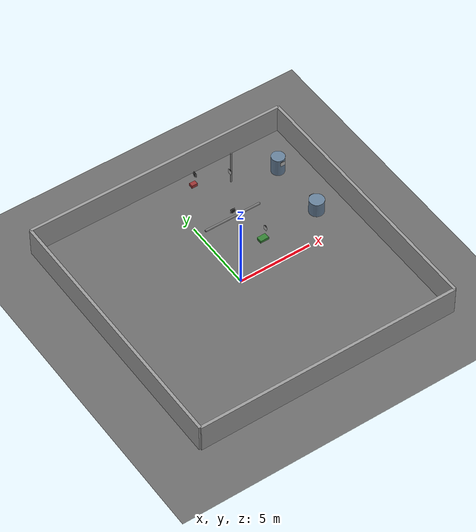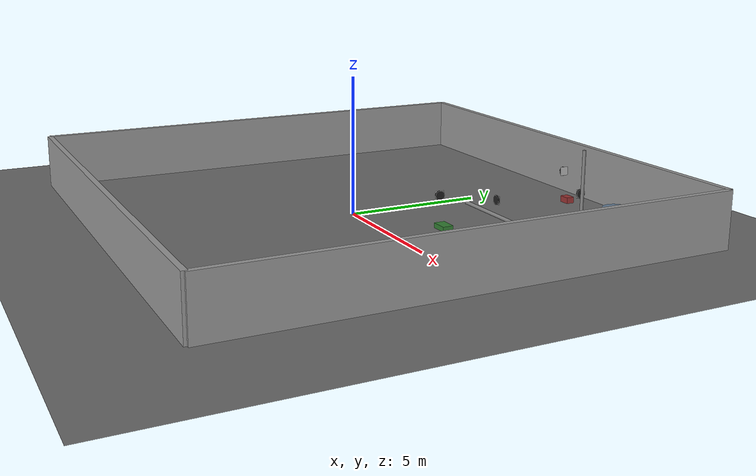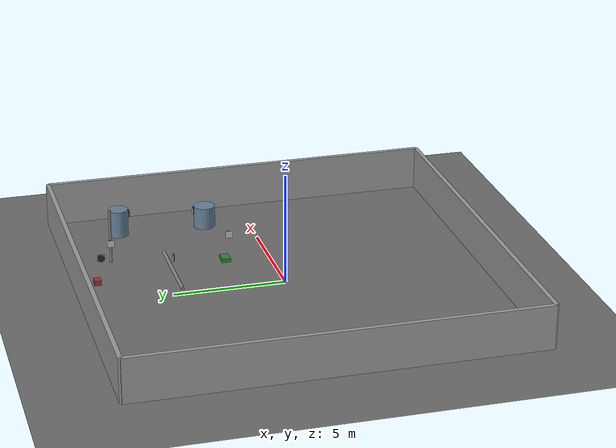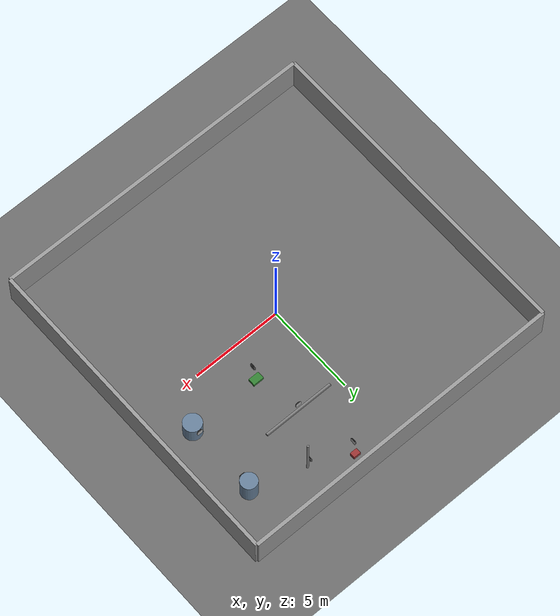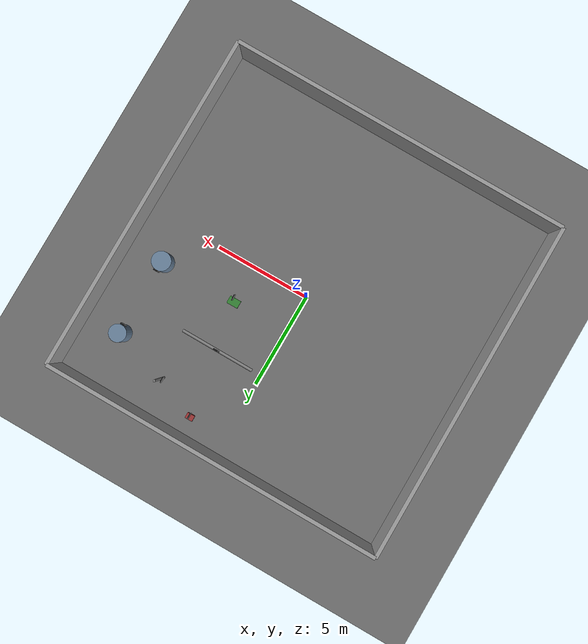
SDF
<?xml version="1.0"?>
<sdf version="1.10">
<world name="plant">

  <plugin filename="gz-sim-physics-system" name="gz::sim::systems::Physics"/>
  <plugin filename="gz-sim-user-commands-system" name="gz::sim::systems::UserCommands"/>
  <plugin filename="gz-sim-scene-broadcaster-system" name="gz::sim::systems::SceneBroadcaster"/>

  <!-- Gazebo Sensors and IMU systems are explicit so CPU/headless runs still
       produce LiDAR, camera, and IMU samples for SLAM and acceptance checks. -->
  <plugin filename="gz-sim-sensors-system" name="gz::sim::systems::Sensors">
    <render_engine>ogre2</render_engine>
  </plugin>
  <plugin filename="gz-sim-imu-system" name="gz::sim::systems::Imu"/>

  <gui fullscreen="0"/>
  <scene>
    <ambient>0.25 0.25 0.25 1</ambient>
    <background>0.08 0.10 0.14 1</background>
  </scene>
  <physics type="ode">
    <max_step_size>0.001</max_step_size>
    <real_time_factor>1.0</real_time_factor>
  </physics>

  <!-- Ground plane -->
  <model name="ground">
    <static>true</static>
    <link name="link">
      <visual name="visual">
        <geometry><plane><size>20 20</size></plane></geometry>
        <material><ambient>0.3 0.3 0.3</ambient><diffuse>0.42 0.42 0.42 1</diffuse></material>
      </visual>
      <collision name="collision">
        <geometry><plane><size>20 20</size></plane></geometry>
      </collision>
    </link>
  </model>

  <!-- Sunlight -->
  <light name="sun" type="directional">
    <pose>0 0 10 0 0 0</pose>
    <diffuse>0.8 0.8 0.8 1</diffuse>
    <specular>0.2 0.2 0.2 1</specular>
    <cast_shadows>false</cast_shadows>
    <attenuation><range>1000</range><constant>1.0</constant><linear>0.0</linear><quadratic>0.0</quadratic></attenuation>
    <direction>-0.5 0.1 -0.9</direction>
  </light>

  <!-- ===== WALLS ===== -->
  <model name="wall_north"><static>true</static><pose>0 9 1 0 0 0</pose>
    <link name="link"><visual name="v"><geometry><box><size>18 0.2 2</size></box></geometry><material><ambient>0.6 0.6 0.6</ambient></material></visual>
    <collision name="c"><geometry><box><size>18 0.2 2</size></box></geometry></collision></link></model>
  <model name="wall_south"><static>true</static><pose>0 -9 1 0 0 0</pose>
    <link name="link"><visual name="v"><geometry><box><size>18 0.2 2</size></box></geometry><material><ambient>0.6 0.6 0.6</ambient></material></visual>
    <collision name="c"><geometry><box><size>18 0.2 2</size></box></geometry></collision></link></model>
  <model name="wall_east"><static>true</static><pose>9 0 1 0 0 1.57</pose>
    <link name="link"><visual name="v"><geometry><box><size>18 0.2 2</size></box></geometry><material><ambient>0.6 0.6 0.6</ambient></material></visual>
    <collision name="c"><geometry><box><size>18 0.2 2</size></box></geometry></collision></link></model>
  <model name="wall_west"><static>true</static><pose>-9 0 1 0 0 1.57</pose>
    <link name="link"><visual name="v"><geometry><box><size>18 0.2 2</size></box></geometry><material><ambient>0.6 0.6 0.6</ambient></material></visual>
    <collision name="c"><geometry><box><size>18 0.2 2</size></box></geometry></collision></link></model>

  <!-- ===== PUMP STATION (south-west area) ===== -->
  <model name="pump_unit"><static>true</static><pose>3 2 0 0 0 0</pose>
    <link name="body"><visual name="v"><geometry><box><size>0.6 0.4 0.3</size></box></geometry><material><ambient>0.2 0.5 0.2</ambient></material></visual>
    <collision name="c"><geometry><box><size>0.6 0.4 0.3</size></box></geometry></collision></link></model>

  <!-- ===== STORAGE TANK 1 (east side) ===== -->
  <model name="tank_1"><static>true</static><pose>7 2.04 0 0 0 0</pose>
    <link name="body"><visual name="v"><geometry><cylinder><radius>0.5</radius><length>2</length></cylinder></geometry><material><ambient>0.4 0.5 0.6</ambient></material></visual>
    <collision name="c"><geometry><cylinder><radius>0.5</radius><length>2</length></cylinder></geometry></collision></link></model>

  <!-- ===== STORAGE TANK 2 (east-north) ===== -->
  <model name="tank_2"><static>true</static><pose>7 6.11 0 0 0 0</pose>
    <link name="body"><visual name="v"><geometry><cylinder><radius>0.45</radius><length>2.5</length></cylinder></geometry><material><ambient>0.4 0.5 0.6</ambient></material></visual>
    <collision name="c"><geometry><cylinder><radius>0.45</radius><length>2.5</length></cylinder></geometry></collision></link></model>

  <!-- ===== PIPE segment 1 (horizontal, along x) ===== -->
  <model name="pipe_1"><static>true</static><pose>2.5 4.5 0 0 0 0</pose>
    <link name="body"><visual name="v"><geometry><cylinder><radius>0.08</radius><length>4</length></cylinder></geometry><pose>0 0 0 0 1.57 0</pose><material><ambient>0.5 0.5 0.5</ambient></material></visual>
    <collision name="c"><geometry><cylinder><radius>0.08</radius><length>4</length></cylinder></geometry><pose>0 0 0 0 1.57 0</pose></collision></link></model>

  <!-- ===== PIPE segment 2 (vertical) ===== -->
  <model name="pipe_2"><static>true</static><pose>4.12 7 1 0 0 0</pose>
    <link name="body"><visual name="v"><geometry><cylinder><radius>0.06</radius><length>3</length></cylinder></geometry><material><ambient>0.5 0.5 0.5</ambient></material></visual>
    <collision name="c"><geometry><cylinder><radius>0.06</radius><length>3</length></cylinder></geometry></collision></link></model>

  <!-- ===== VALVE STATION (north) ===== -->
  <model name="valve_unit"><static>true</static><pose>2 8 0 0 0 0</pose>
    <link name="body"><visual name="v"><geometry><box><size>0.4 0.3 0.4</size></box></geometry><material><ambient>0.6 0.2 0.2</ambient></material></visual>
    <collision name="c"><geometry><box><size>0.4 0.3 0.4</size></box></geometry></collision></link></model>

  <!-- Reusable gauge face instances; names and poses match the asset registry. -->
  <include>
    <uri>model://gauge_asset</uri>
    <name>gauge_pipe_01</name>
    <pose>2.5 4.5 0.6 0 0 1.57</pose>
  </include>
  <include>
    <uri>model://gauge_asset</uri>
    <name>gauge_pipe_02</name>
    <pose>4.0 7.0 0.9 0 0 3.14</pose>
  </include>
  <include>
    <uri>model://gauge_asset</uri>
    <name>gauge_pump_01</name>
    <pose>3.0 1.8 1.2 0 0 3.14</pose>
  </include>
  <include>
    <uri>model://gauge_asset</uri>
    <name>gauge_tank_01</name>
    <pose>7.0 2.6 0.8 0 0 1.57</pose>
  </include>
  <include>
    <uri>model://gauge_asset</uri>
    <name>gauge_tank_02</name>
    <pose>7.0 5.6 1.0 0 0 -1.57</pose>
  </include>
  <include>
    <uri>model://gauge_asset</uri>
    <name>gauge_valve_01</name>
    <pose>2.0 7.8 1.2 0 0 0.0</pose>
  </include>

</world>
</sdf>

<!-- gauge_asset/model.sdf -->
<sdf version="1.10">
  <model name="gauge_asset">
    <static>true</static>
    <link name="gauge">
      <!-- The face centre is the include origin and its outward normal is +X. -->
      <visual name="gauge_face">
        <pose>0 0 0 0 0 0</pose>
        <geometry>
          <plane>
            <normal>1 0 0</normal>
            <size>0.32 0.32</size>
          </plane>
        </geometry>
        <material>
          <lighting>false</lighting>
          <pbr>
            <metal>
              <albedo_map>model://gauge_asset/materials/textures/gauge_face.png</albedo_map>
              <roughness>1.0</roughness>
              <metalness>0.0</metalness>
            </metal>
          </pbr>
        </material>
        <cast_shadows>false</cast_shadows>
      </visual>
      <!-- Cylinder axis is rotated onto X and the housing stays behind the face. -->
      <visual name="housing">
        <pose>-0.03 0 0 0 1.57079632679 0</pose>
        <geometry>
          <cylinder>
            <radius>0.17</radius>
            <length>0.05</length>
          </cylinder>
        </geometry>
        <material>
          <ambient>0.08 0.08 0.08 1</ambient>
          <diffuse>0.12 0.12 0.12 1</diffuse>
        </material>
      </visual>
      <collision name="housing_collision">
        <pose>-0.03 0 0 0 1.57079632679 0</pose>
        <geometry>
          <cylinder>
            <radius>0.17</radius>
            <length>0.05</length>
          </cylinder>
        </geometry>
      </collision>
    </link>
  </model>
</sdf>
